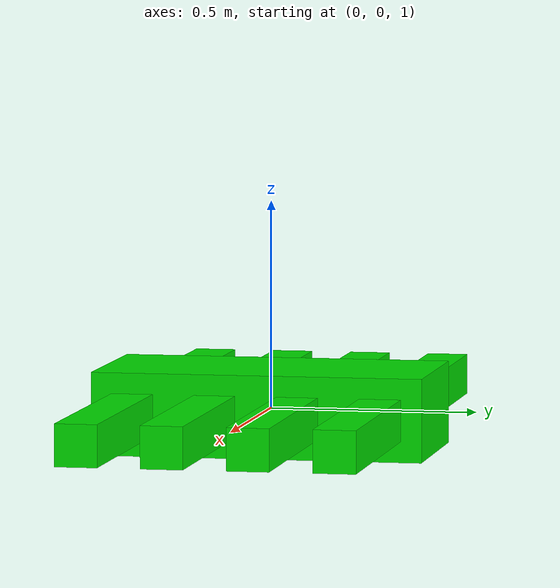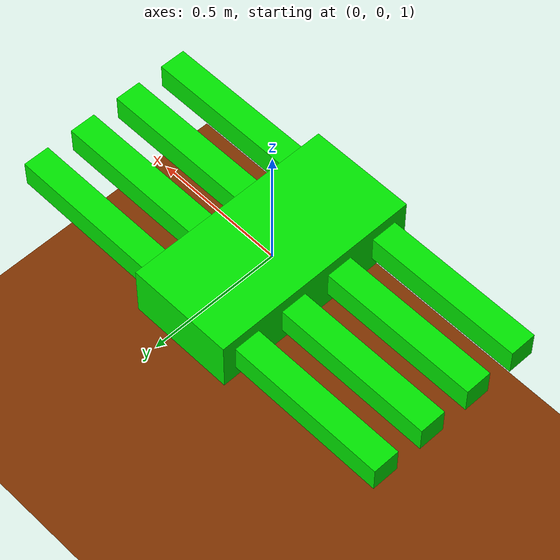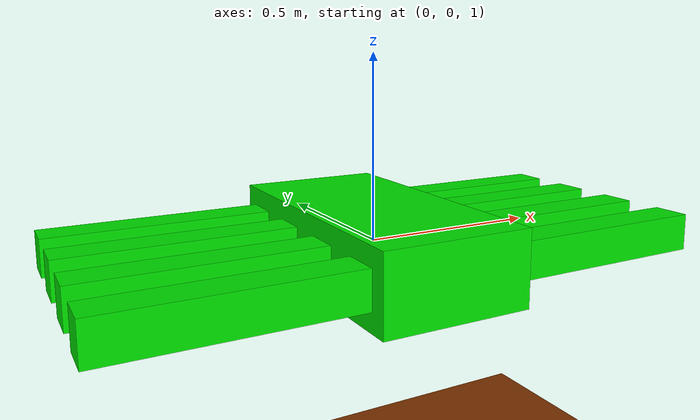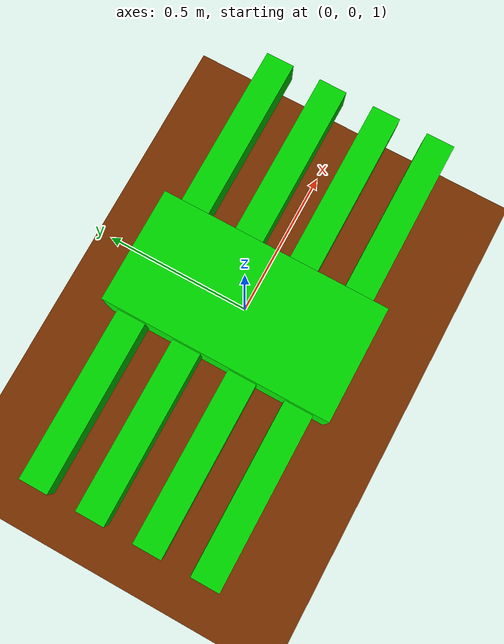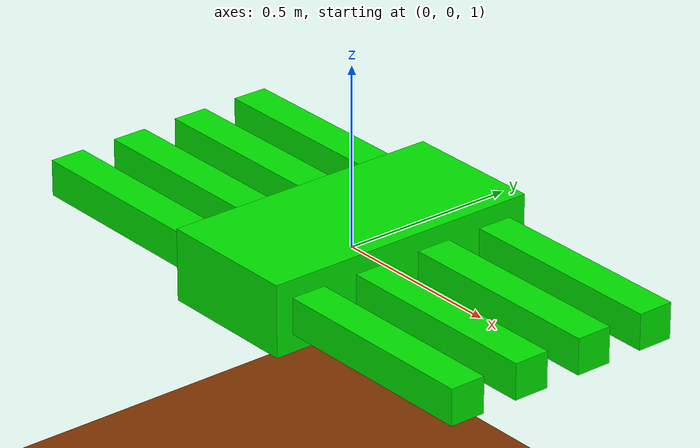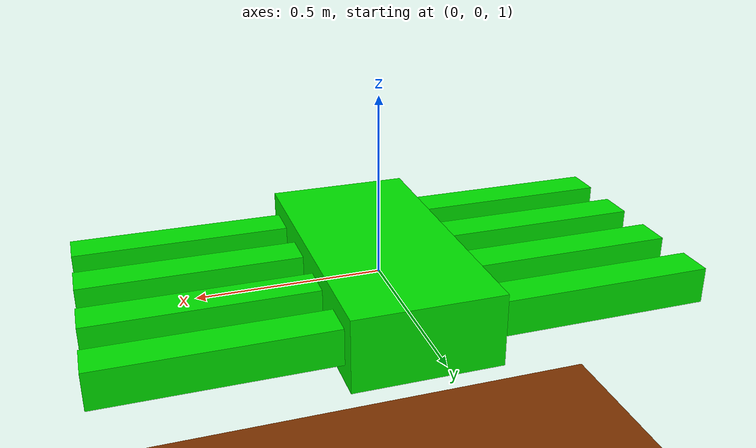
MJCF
<mujoco>
    <worldbody>
        <light diffuse=".5 .5 .5" pos="0 0 2" dir="0 -1 0"/>
        <geom type="plane" size="10 10 0.1" rgba=".5 0.2 0 1"/>

        <body name="spider" pos="0 0 1" euler="0 0 0">
            <joint type="free" axis="0 0 0" pos="0 0 0"/>
            <body name="body" pos="0 0 0" euler="0 0 0">
                <geom type="box" size=".2 .4 .1" rgba="0 .9 0 1" mass="1"/>
            </body>

            <body name="leg1" pos=".5 -.3 0" euler="0 -90 0">
                <joint name="j1" type="hinge" axis="0 1 0" pos="0 0 .25" range="-45 45"/>
                <geom type="box" size=".05 .05 .3" rgba="0 .9 0 1" mass="1"/>
            </body>

            <body name="leg2" pos="-.5 -.3 0" euler="0 90 0">
                <joint name="j2" type="hinge" axis="0 1 0" pos="0 0 .25" range="-45 45"/>
                <geom type="box" size=".05 .05 .3" rgba="0 .9 0 1" mass="1"/>
            </body>

            <body name="leg3" pos=".5 -.1 0" euler="0 -90 0">
                <joint name="j3" type="hinge" axis="0 1 0" pos="0 0 .25" range="-45 45"/>
                <geom type="box" size=".05 .05 .3" rgba="0 .9 0 1" mass="1"/>
            </body>

            <body name="leg4" pos="-.5 -.1 0" euler="0 90 0">
                <joint name="j4" type="hinge" axis="0 1 0" pos="0 0 .25" range="-45 45"/>
                <geom type="box" size=".05 .05 .3" rgba="0 .9 0 1" mass="1"/>
            </body>

            <body name="leg5" pos=".5 .1 0" euler="0 -90 0">
                <joint name="j5" type="hinge" axis="0 1 0" pos="0 0 .25" range="-45 45"/>
                <geom type="box" size=".05 .05 .3" rgba="0 .9 0 1" mass="1"/>
            </body>

            <body name="leg6" pos="-.5 .1 0" euler="0 90 0">
                <joint name="j6" type="hinge" axis="0 1 0" pos="0 0 .25" range="-45 45"/>
                <geom type="box" size=".05 .05 .3" rgba="0 .9 0 1" mass="1"/>
            </body>

            <body name="leg7" pos=".5 .3 0" euler="0 -90 0">
                <joint name="j7" type="hinge" axis="0 1 0" pos="0 0 .25" range="-45 45"/>
                <geom type="box" size=".05 .05 .3" rgba="0 .9 0 1" mass="1"/>
            </body>

            <body name="leg8" pos="-.5 .3 0" euler="0 90 0">
                <joint name="j8" type="hinge" axis="0 1 0" pos="0 0 .25" range="-45 45"/>
                <geom type="box" size=".05 .05 .3" rgba="0 .9 0 1" mass="1"/>
            </body>
        </body>
    </worldbody>

    <actuator>
        <!-- Actuator for leg 1 -->
        <motor joint="j1" name="m1" gear="1" ctrllimited="true" ctrlrange="-5 5"/>

        <motor joint="j2" name="m2" gear="10" ctrllimited="true" ctrlrange="-5 5"/>
        <motor joint="j3" name="m3" gear="10" ctrllimited="true" ctrlrange="-5 5"/>
        <motor joint="j4" name="m4" gear="10" ctrllimited="true" ctrlrange="-5 5"/>
        <motor joint="j5" name="m5" gear="10" ctrllimited="true" ctrlrange="-5 5"/>
        <motor joint="j6" name="m6" gear="10" ctrllimited="true" ctrlrange="-5 5"/>
        <motor joint="j7" name="m7" gear="10" ctrllimited="true" ctrlrange="-5 5"/>
        <motor joint="j8" name="m8" gear="10" ctrllimited="true" ctrlrange="-5 5"/>

        <!-- Actuator for leg 2 -->

        <!-- Add actuators for the rest of the legs (j3 to j8) -->
        <!-- Example: Actuator for leg 3 -->
        <!-- Add actuators for the remaining legs similarly -->
    </actuator>
</mujoco>
